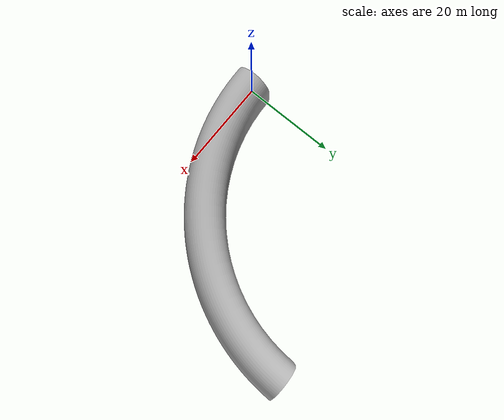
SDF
<?xml version="1.0" ?>
<sdf version="1.5">
  <model name="tunnel_c_shape">
    <static>true</static>
    <link name="tunnel_c_shape">
      <collision name="collision">
        <geometry>
          <mesh>
          <scale>1.00 1.00 1.00</scale>
            <uri>model://tunnel_c_shape/meshes/tunnel_c_shape.dae</uri>
          </mesh>
        </geometry>
      </collision>
      <visual name="visual">
        <geometry>
          <mesh>
          <scale>1.00 1.00 1.00</scale>
            <uri>model://tunnel_c_shape/meshes/tunnel_c_shape.dae</uri>
          </mesh>
        </geometry>
      </visual>
    </link>
  </model>
</sdf>
